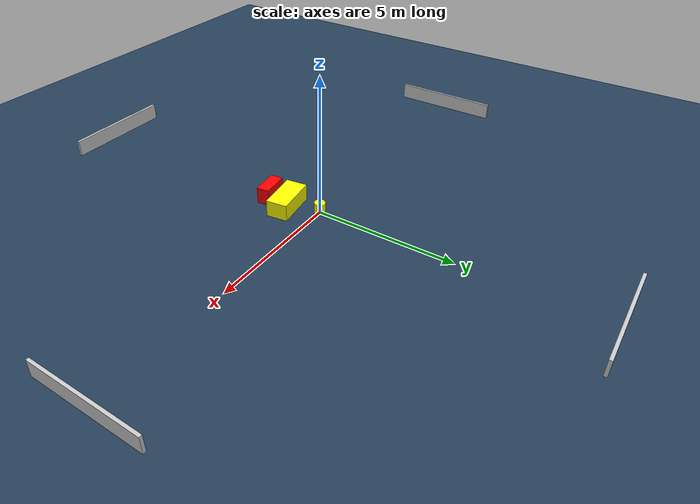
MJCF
<?xml version="1.0" ?>
<mujoco model="generated_environment">
  <option timestep="0.01" integrator="RK4" cone="elliptic"/>
  <default>
    <geom density="1"/>
  </default>
  <asset>
    <texture builtin="gradient" height="3072" name="skybox" rgb1="0.3 0.5 0.7" rgb2="0 0 0" type="skybox" width="512"/>
    <texture builtin="checker" height="300" name="groundplane" rgb1="0.2 0.3 0.4" rgb2="0.1 0.2 0.3" type="2d" width="300"/>
    <material name="groundplane" reflectance="0.2" texrepeat="5 5" texture="groundplane"/>
  </asset>
  <worldbody>
    <light dir="0 0 -1" directional="true" pos="0 0 1.5"/>
    <geom condim="3" friction="0.5 0.005 0.001" material="groundplane" name="floor" pos="0 0 0" size="0 0 0.05" type="plane"/>
    <body name="walls">
      <geom name="wall_1" condim="4" pos="-10.0 0.0 0.3" rgba="0.800000011920929 0.800000011920929 0.800000011920929 1.0" size="0.05 2.0 0.3" type="box"/>
      <geom name="wall_2" condim="4" pos="10.0 0.0 0.3" rgba="0.800000011920929 0.800000011920929 0.800000011920929 1.0" size="0.05 2.0 0.3" type="box"/>
      <geom name="wall_3" condim="4" pos="0.0 -10.0 0.3" rgba="0.800000011920929 0.800000011920929 0.800000011920929 1.0" size="2.0 0.05 0.3" type="box"/>
      <geom name="wall_4" condim="4" pos="0.0 10.0 0.3" rgba="0.800000011920929 0.800000011920929 0.800000011920929 1.0" size="2.0 0.05 0.3" type="box"/>
    </body>
    <body name="robot">
      <joint name="joint_x" type="slide" pos="0 0 0" axis="1 0 0"/>
      <joint name="joint_y" type="slide" pos="0 0 0" axis="0 1 0"/>
      <geom name="robot" type="cylinder" pos="0.0 0.0 0.2" size="0.2 0.2 0.0" mass="5.0" friction="1.0 0.005 0.0001" condim="4" rgba="1.0 1.0 0.0 1.0"/>
    </body>
    <body name="obstacle_1_movable">
      <geom name="obstacle_1_movable" condim="4" pos="0.3760779168305056 -1.1143502594050367 0.3" euler="0 0 7.797236911403975" friction="0.0 0.005 0.001" rgba="1.0 1.0 0.0 1.0" size="0.7467508730236798 0.37898654104089713 0.3" type="box" mass="0.1"/>
      <joint type="free"/>
    </body>
    <body name="obstacle_2_static">
      <geom name="obstacle_2_static" condim="4" pos="0.20045014638188602 -1.9808994314750163 0.3" euler="0 0 96.429480656502" friction="0.0 0.005 0.001" rgba="1.0 0.0 0.0 1.0" size="0.22583087400589863 0.4856607212622069 0.3" type="box"/>
    </body>
  </worldbody>
  <actuator>
    <motor name="actuator_x" joint="joint_x" gear="1" ctrlrange="-1 1"/>
    <motor name="actuator_y" joint="joint_y" gear="1" ctrlrange="-1 1"/>
  </actuator>
</mujoco>
